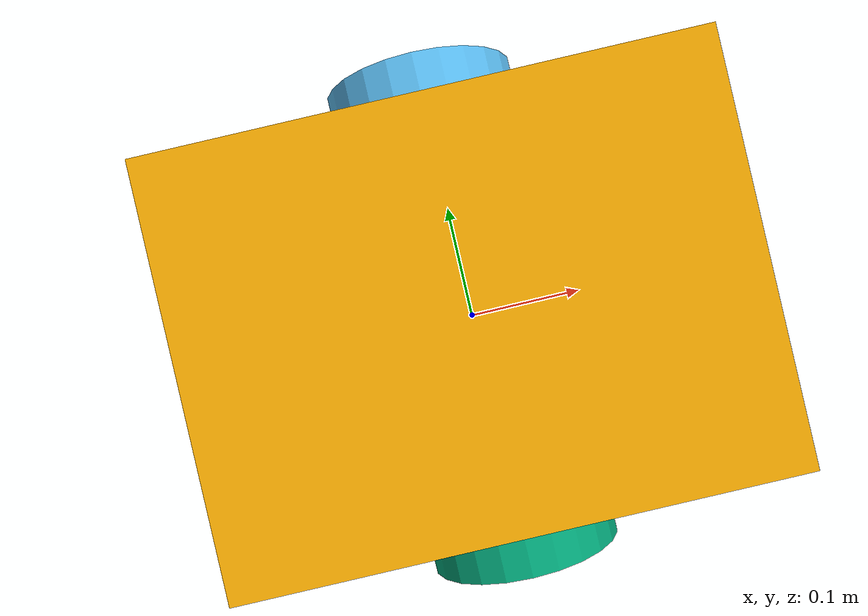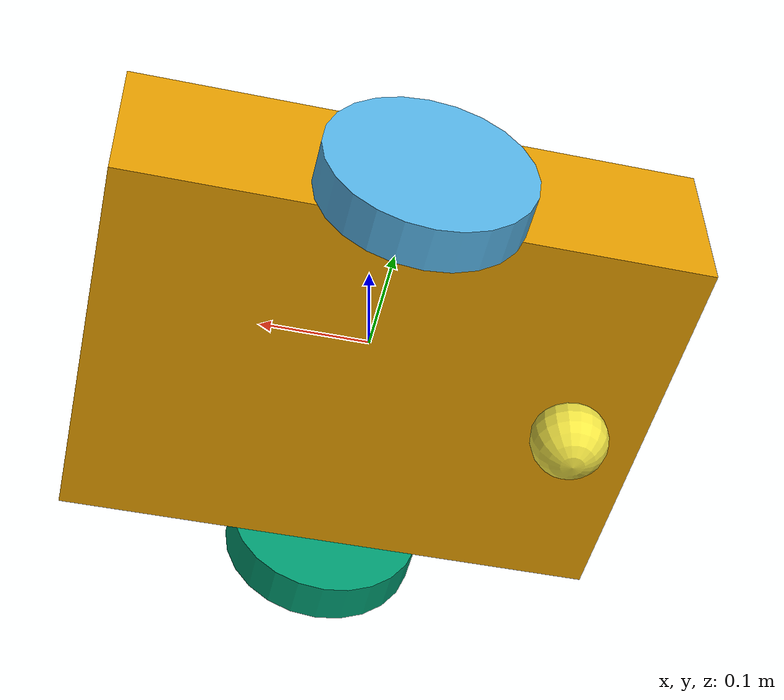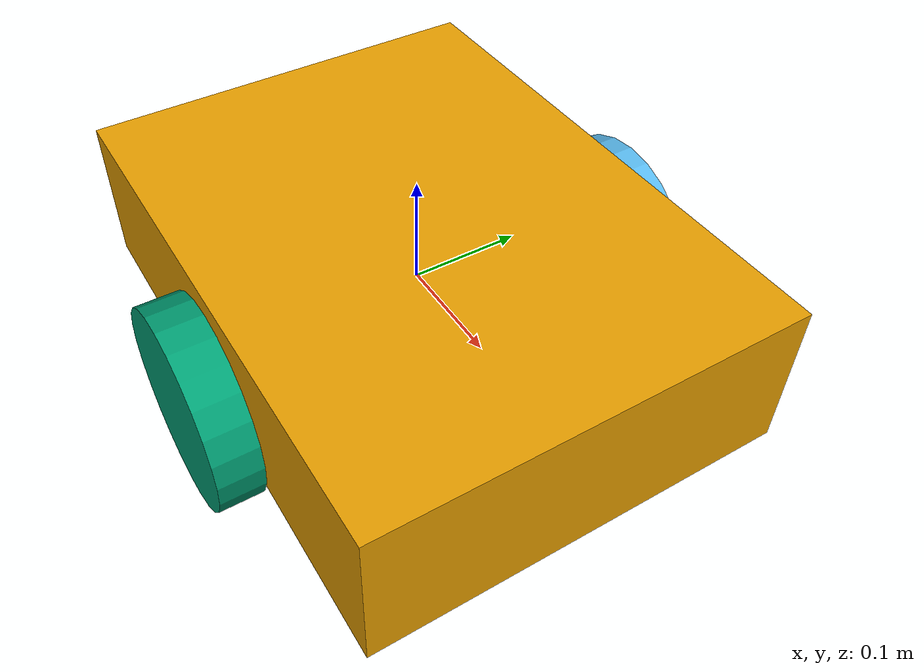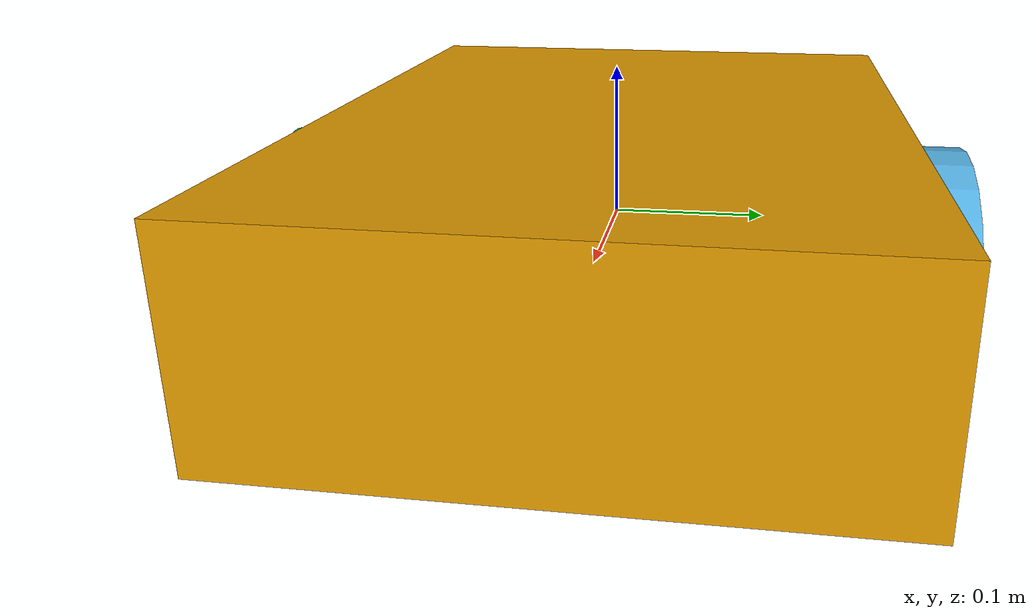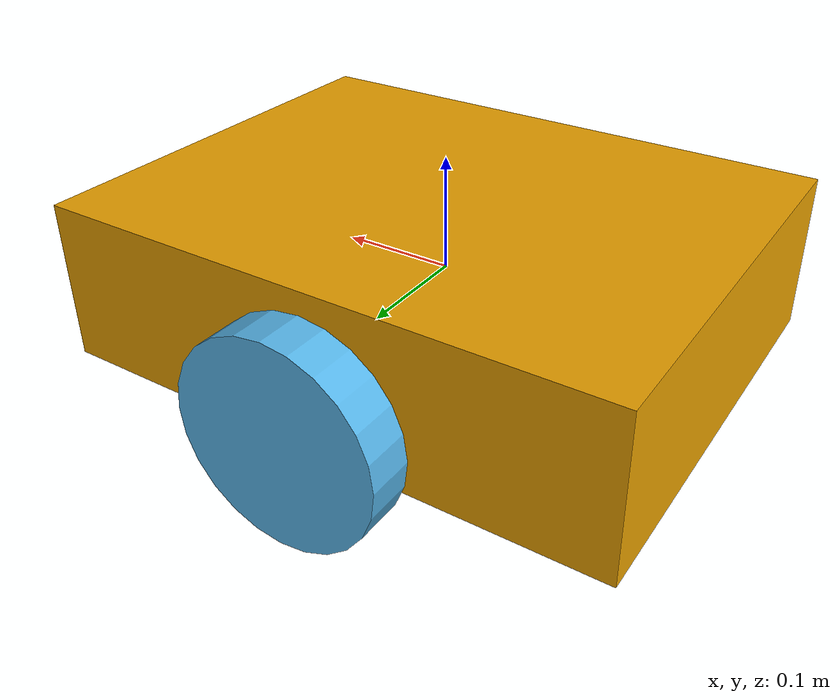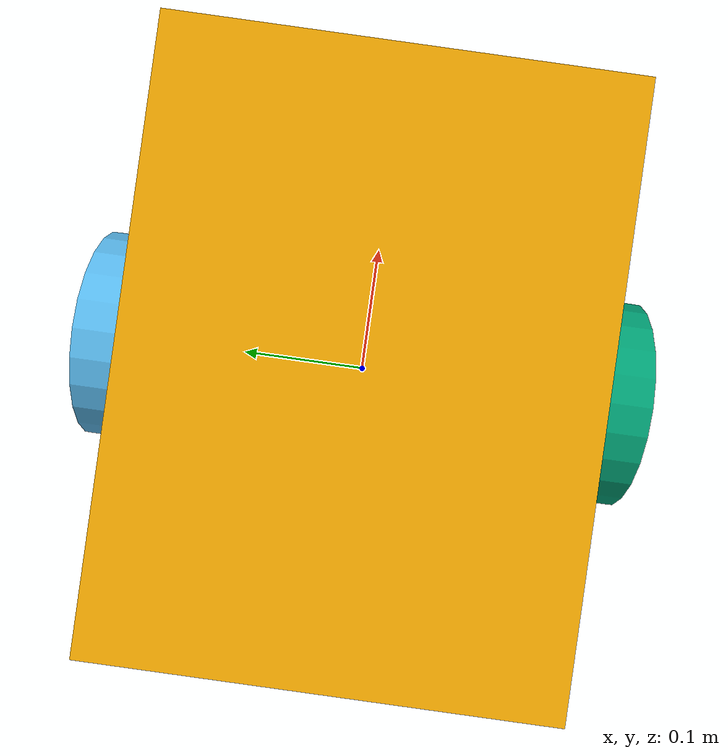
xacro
<?xml version="1.0"?>
<robot xmlns:xacro="http://www.ros.org/wiki/xacro" name="amr">

  <xacro:property name="base_length" value="0.50"/>
  <xacro:property name="base_width" value="0.38"/>
  <xacro:property name="base_height" value="0.14"/>
  <xacro:property name="wheel_radius" value="0.09"/>
  <xacro:property name="wheel_width" value="0.04"/>
  <xacro:property name="wheel_y" value="0.21"/>

  <link name="base_link">
    <visual>
      <geometry>
        <box size="${base_length} ${base_width} ${base_height}"/>
      </geometry>
    </visual>
    <collision>
      <geometry>
        <box size="${base_length} ${base_width} ${base_height}"/>
      </geometry>
    </collision>
    <inertial>
      <mass value="12.0"/>
      <origin xyz="0 0 0"/>
      <inertia ixx="0.163" ixy="0" ixz="0"
               iyy="0.270" iyz="0"
               izz="0.394"/>
    </inertial>
  </link>

  <xacro:macro name="drive_wheel" params="side y">
    <link name="${side}_wheel_link">
      <visual>
        <origin rpy="1.57079632679 0 0"/>
        <geometry>
          <cylinder radius="${wheel_radius}" length="${wheel_width}"/>
        </geometry>
      </visual>
      <collision>
        <origin rpy="1.57079632679 0 0"/>
        <geometry>
          <cylinder radius="${wheel_radius}" length="${wheel_width}"/>
        </geometry>
      </collision>
      <inertial>
        <mass value="0.8"/>
        <inertia ixx="0.003" ixy="0" ixz="0"
                 iyy="0.003" iyz="0"
                 izz="0.001"/>
      </inertial>
    </link>
    <joint name="${side}_wheel_joint" type="continuous">
      <parent link="base_link"/>
      <child link="${side}_wheel_link"/>
      <origin xyz="0 ${y} -0.04"/>
      <axis xyz="0 1 0"/>
    </joint>
  </xacro:macro>

  <xacro:drive_wheel side="left" y="${wheel_y}"/>
  <xacro:drive_wheel side="right" y="-${wheel_y}"/>

  <link name="caster_link">
    <visual>
      <geometry>
        <sphere radius="0.035"/>
      </geometry>
    </visual>
    <collision>
      <geometry>
        <sphere radius="0.035"/>
      </geometry>
    </collision>
    <inertial>
      <mass value="0.2"/>
      <inertia ixx="0.0001" ixy="0" ixz="0"
               iyy="0.0001" iyz="0"
               izz="0.0001"/>
    </inertial>
  </link>

  <joint name="caster_joint" type="fixed">
    <parent link="base_link"/>
    <child link="caster_link"/>
    <origin xyz="-0.18 0 -0.085"/>
  </joint>

  <link name="base_scan"/>

  <joint name="base_scan_joint" type="fixed">
    <parent link="base_link"/>
    <child link="base_scan"/>
    <origin xyz="0.18 0 0.10"/>
  </joint>

</robot>
